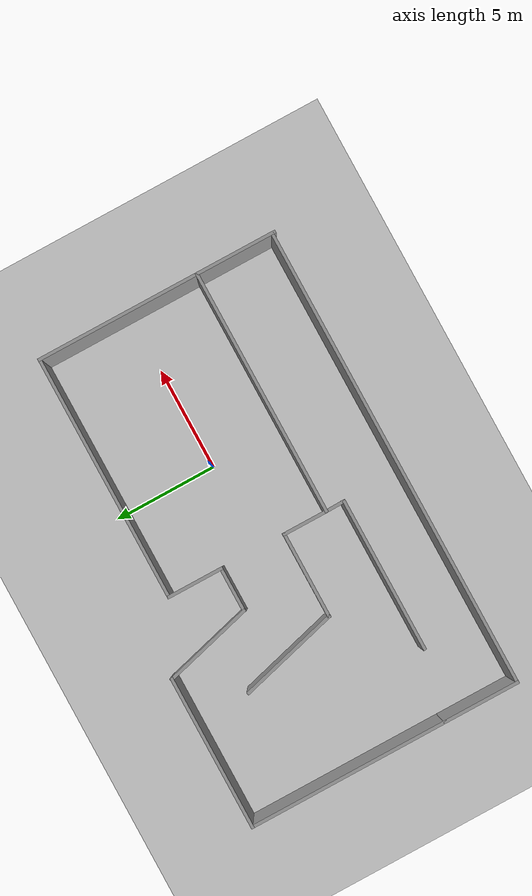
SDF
<sdf version="1.6">
 <world name="default">
  <light name="sun" type="directional">
   <pose>0 0 10 0 -0 0</pose>
   <diffuse>0.8 0.8 0.8 1</diffuse>
   <specular>0.2 0.2 0.2 1</specular>
   <attenuation>
    <range>1000</range>
    <constant>0.9</constant>
    <linear>0.01</linear>
    <quadratic>0.001</quadratic>
   </attenuation>
   <direction>-0.5 0.1 -0.9</direction>
  </light>
  <model name="ground_plane">
   <static>1</static>
   <link name="link">
    <collision name="collision">
     <geometry><plane><normal>0 0 1</normal><size>100 100</size></plane></geometry>
     <surface>
      <contact><collide_bitmask>65535</collide_bitmask></contact>
      <friction><ode><mu>100</mu><mu2>50</mu2></ode></friction>
     </surface>
    </collision>
    <visual name="visual">
     <cast_shadows>0</cast_shadows>
     <geometry><plane><normal>0 0 1</normal><size>100 100</size></plane></geometry>
     <material>
      <script><uri>file://media/materials/scripts/gazebo.material</uri><name>Gazebo/Grey</name></script>
     </material>
    </visual>
   </link>
  </model>
  <gravity>0 0 -9.8</gravity>
  <magnetic_field>6e-06 2.3e-05 -4.2e-05</magnetic_field>
  <atmosphere type="adiabatic"/>
  <physics name="default_physics" default="0" type="ode">
   <max_step_size>0.001</max_step_size>
   <real_time_factor>1</real_time_factor>
   <real_time_update_rate>1000</real_time_update_rate>
  </physics>
  <scene><ambient>0.4 0.4 0.4 1</ambient><background>0.7 0.7 0.7 1</background><shadows>1</shadows></scene>
  <audio><device>default</device></audio>
  <spherical_coordinates>
   <surface_model>EARTH_WGS84</surface_model>
   <latitude_deg>0</latitude_deg>
   <longitude_deg>0</longitude_deg>
   <elevation>0</elevation>
   <heading_deg>0</heading_deg>
  </spherical_coordinates>
  <model name="LVL_Two">
   <pose>-3.58942 -0.643386 0 0 -0 0</pose>
   <link name="Wall_15">
    <collision name="Wall_15_Collision">
     <geometry><box><size>12 0.15 2.5</size></box></geometry>
     <pose>0 0 1.25 0 -0 0</pose>
    </collision>
    <visual name="Wall_15_Visual">
     <pose>0 0 1.25 0 -0 0</pose>
     <geometry><box><size>12 0.15 2.5</size></box></geometry>
     <material>
      <script><uri>file://media/materials/scripts/gazebo.material</uri><name>Gazebo/Grey</name></script>
      <ambient>1 1 1 1</ambient>
     </material>
     <meta><layer>0</layer></meta>
    </visual>
    <pose>5.28793 5.04068 0 0 -0 0</pose>
   </link>
   <link name="Wall_16">
    <collision name="Wall_16_Collision">
     <geometry><box><size>8 0.15 2.5</size></box></geometry>
     <pose>0 0 1.25 0 -0 0</pose>
    </collision>
    <visual name="Wall_16_Visual">
     <pose>0 0 1.25 0 -0 0</pose>
     <geometry><box><size>8 0.15 2.5</size></box></geometry>
     <material>
      <script><uri>file://media/materials/scripts/gazebo.material</uri><name>Gazebo/Grey</name></script>
      <ambient>1 1 1 1</ambient>
     </material>
     <meta><layer>0</layer></meta>
    </visual>
    <pose>11.2129 1.11568 0 0 -0 -1.5708</pose>
   </link>
   <link name="Wall_17">
    <collision name="Wall_17_Collision">
     <geometry><box><size>12 0.15 2.5</size></box></geometry>
     <pose>0 0 1.25 0 -0 0</pose>
    </collision>
    <visual name="Wall_17_Visual">
     <pose>0 0 1.25 0 -0 0</pose>
     <geometry><box><size>12 0.15 2.5</size></box></geometry>
     <material>
      <script><uri>file://media/materials/scripts/gazebo.material</uri><name>Gazebo/Grey</name></script>
      <ambient>1 1 1 1</ambient>
     </material>
     <meta><layer>0</layer></meta>
    </visual>
    <pose>5.28793 -2.80932 0 0 -0 3.14159</pose>
   </link>
   <link name="Wall_20">
    <collision name="Wall_20_Collision">
     <geometry><box><size>2.75 0.15 2.5</size></box></geometry>
     <pose>0 0 1.25 0 -0 0</pose>
    </collision>
    <visual name="Wall_20_Visual">
     <pose>0 0 1.25 0 -0 0</pose>
     <geometry><box><size>2.75 0.15 2.5</size></box></geometry>
     <material>
      <script><uri>file://media/materials/scripts/gazebo.material</uri><name>Gazebo/Grey</name></script>
      <ambient>1 1 1 1</ambient>
     </material>
     <meta><layer>0</layer></meta>
    </visual>
    <pose>-0.637068 3.74068 0 0 -0 -1.5708</pose>
   </link>
   <link name="Wall_23">
    <collision name="Wall_23_Collision">
     <geometry><box><size>2.25 0.15 2.5</size></box></geometry>
     <pose>0 0 1.25 0 -0 0</pose>
    </collision>
    <visual name="Wall_23_Visual">
     <pose>0 0 1.25 0 -0 0</pose>
     <geometry><box><size>2.25 0.15 2.5</size></box></geometry>
     <material>
      <script><uri>file://media/materials/scripts/gazebo.material</uri><name>Gazebo/Grey</name></script>
      <ambient>1 1 1 1</ambient>
     </material>
     <meta><layer>0</layer></meta>
    </visual>
    <pose>-0.637068 -1.75932 0 0 -0 1.5708</pose>
   </link>
   <link name="Wall_25">
    <collision name="Wall_25_Collision">
     <geometry><box><size>2.25 0.15 2.5</size></box></geometry>
     <pose>0 0 1.25 0 -0 0</pose>
    </collision>
    <visual name="Wall_25_Visual">
     <pose>0 0 1.25 0 -0 0</pose>
     <geometry><box><size>2.25 0.15 2.5</size></box></geometry>
     <material>
      <script><uri>file://media/materials/scripts/gazebo.material</uri><name>Gazebo/Grey</name></script>
      <ambient>1 1 1 1</ambient>
     </material>
     <meta><layer>0</layer></meta>
    </visual>
    <pose>-1.68707 2.44068 0 0 -0 3.14159</pose>
   </link>
   <link name="Wall_27">
    <collision name="Wall_27_Collision">
     <geometry><box><size>4.25 0.15 2.5</size></box></geometry>
     <pose>0 0 1.25 0 -0 0</pose>
    </collision>
    <visual name="Wall_27_Visual">
     <pose>0 0 1.25 0 -0 0</pose>
     <geometry><box><size>4.25 0.15 2.5</size></box></geometry>
     <material>
      <script><uri>file://media/materials/scripts/gazebo.material</uri><name>Gazebo/Grey</name></script>
      <ambient>1 1 1 1</ambient>
     </material>
     <meta><layer>0</layer></meta>
    </visual>
    <pose>-2.68707 -0.709316 0 0 -0 3.14159</pose>
   </link>
   <link name="Wall_28">
    <collision name="Wall_28_Collision">
     <geometry><box><size>5 0.15 2.5</size></box></geometry>
     <pose>0 0 1.25 0 -0 0</pose>
    </collision>
    <visual name="Wall_28_Visual">
     <pose>0 0 1.25 0 -0 0</pose>
     <geometry><box><size>5 0.15 2.5</size></box></geometry>
     <material>
      <script><uri>file://media/materials/scripts/gazebo.material</uri><name>Gazebo/Grey</name></script>
      <ambient>1 1 1 1</ambient>
     </material>
     <meta><layer>0</layer></meta>
    </visual>
    <pose>-5.3647 1.63305 0 0 -0 1.8326</pose>
   </link>
   <link name="Wall_30">
    <collision name="Wall_30_Collision">
     <geometry><box><size>4.5 0.15 2.5</size></box></geometry>
     <pose>0 0 1.25 0 -0 0</pose>
    </collision>
    <visual name="Wall_30_Visual">
     <pose>0 0 1.25 0 -0 0</pose>
     <geometry><box><size>4.5 0.15 2.5</size></box></geometry>
     <material>
      <script><uri>file://media/materials/scripts/gazebo.material</uri><name>Gazebo/Grey</name></script>
      <ambient>1 1 1 1</ambient>
     </material>
     <meta><layer>0</layer></meta>
    </visual>
    <pose>-3.3 4.54157 0 0 -0 1.8326</pose>
   </link>
   <link name="Wall_31">
    <collision name="Wall_31_Collision">
     <geometry><box><size>7.5 0.15 2.5</size></box></geometry>
     <pose>0 0 1.25 0 -0 0</pose>
    </collision>
    <visual name="Wall_31_Visual">
     <pose>0 0 1.25 0 -0 0</pose>
     <geometry><box><size>7.5 0.15 2.5</size></box></geometry>
     <material>
      <script><uri>file://media/materials/scripts/gazebo.material</uri><name>Gazebo/Grey</name></script>
      <ambient>1 1 1 1</ambient>
     </material>
     <meta><layer>0</layer></meta>
    </visual>
    <pose>-7.53793 6.64246 0 0 -0 3.14159</pose>
   </link>
   <link name="Wall_32">
    <collision name="Wall_32_Collision">
     <geometry><box><size>9.75 0.15 2.5</size></box></geometry>
     <pose>0 0 1.25 0 -0 0</pose>
    </collision>
    <visual name="Wall_32_Visual">
     <pose>0 0 1.25 0 -0 0</pose>
     <geometry><box><size>9.75 0.15 2.5</size></box></geometry>
     <material>
      <script><uri>file://media/materials/scripts/gazebo.material</uri><name>Gazebo/Grey</name></script>
      <ambient>1 1 1 1</ambient>
     </material>
     <meta><layer>0</layer></meta>
    </visual>
    <pose>-11.2129 1.84246 0 0 -0 -1.5708</pose>
   </link>
   <link name="Wall_43">
    <collision name="Wall_43_Collision">
     <geometry><box><size>3.75 0.15 2.5</size></box></geometry>
     <pose>0 0 1.25 0 -0 0</pose>
    </collision>
    <visual name="Wall_43_Visual">
     <pose>0 0 1.25 0 -0 0</pose>
     <geometry><box><size>3.75 0.15 2.5</size></box></geometry>
     <material>
      <script><uri>file://media/materials/scripts/gazebo.material</uri><name>Gazebo/Grey</name></script>
      <ambient>1 1 1 1</ambient>
     </material>
     <meta><layer>0</layer></meta>
    </visual>
    <pose>-11.2129 -4.75754 0 0 -0 -1.5708</pose>
   </link>
   <link name="Wall_44">
    <collision name="Wall_44_Collision">
     <geometry><box><size>22.5 0.15 2.5</size></box></geometry>
     <pose>0 0 1.25 0 -0 0</pose>
    </collision>
    <visual name="Wall_44_Visual">
     <pose>0 0 1.25 0 -0 0</pose>
     <geometry><box><size>22.5 0.15 2.5</size></box></geometry>
     <material>
      <script><uri>file://media/materials/scripts/gazebo.material</uri><name>Gazebo/Grey</name></script>
      <ambient>1 1 1 1</ambient>
     </material>
     <meta><layer>0</layer></meta>
    </visual>
    <pose>-0.037931 -6.55754 0 0 -0 0</pose>
   </link>
   <link name="Wall_47">
    <collision name="Wall_47_Collision">
     <geometry><box><size>4 0.15 2.5</size></box></geometry>
     <pose>0 0 1.25 0 -0 0</pose>
    </collision>
    <visual name="Wall_47_Visual">
     <pose>0 0 1.25 0 -0 0</pose>
     <geometry><box><size>4 0.15 2.5</size></box></geometry>
     <material>
      <script><uri>file://media/materials/scripts/gazebo.material</uri><name>Gazebo/Grey</name></script>
      <ambient>1 1 1 1</ambient>
     </material>
     <meta><layer>0</layer></meta>
    </visual>
    <pose>11.2129 -4.73432 0 0 -0 -1.5708</pose>
   </link>
   <link name="Wall_50">
    <collision name="Wall_50_Collision">
     <geometry><box><size>7.5 0.15 2.5</size></box></geometry>
     <pose>0 0 1.25 0 -0 0</pose>
    </collision>
    <visual name="Wall_50_Visual">
     <pose>0 0 1.25 0 -0 0</pose>
     <geometry><box><size>7.5 0.15 2.5</size></box></geometry>
     <material>
      <script><uri>file://media/materials/scripts/gazebo.material</uri><name>Gazebo/Grey</name></script>
      <ambient>1 1 1 1</ambient>
     </material>
     <meta><layer>0</layer></meta>
    </visual>
    <pose>-4.29403 -3.69907 0 0 -0 0</pose>
   </link>
   <link name="Wall_51">
    <collision name="Wall_51_Collision">
     <geometry><box><size>1.03994 0.15 2.5</size></box></geometry>
     <pose>0 0 1.25 0 -0 0</pose>
    </collision>
    <visual name="Wall_51_Visual">
     <pose>0 0 1.25 0 -0 0</pose>
     <geometry><box><size>1.03994 0.15 2.5</size></box></geometry>
     <material>
      <script><uri>file://media/materials/scripts/gazebo.material</uri><name>Gazebo/Grey</name></script>
      <ambient>1 1 1 1</ambient>
     </material>
     <meta><layer>0</layer></meta>
    </visual>
    <pose>-0.628049 -3.25419 0 0 -0 1.59107</pose>
   </link>
   <static>1</static>
  </model>
 </world>
</sdf>
